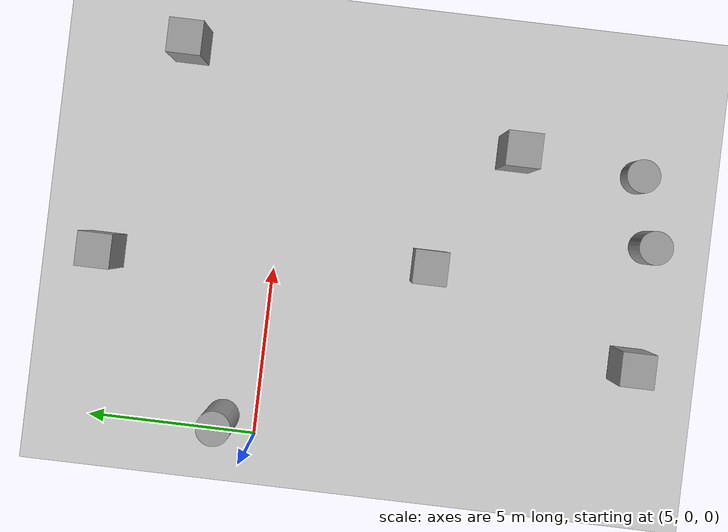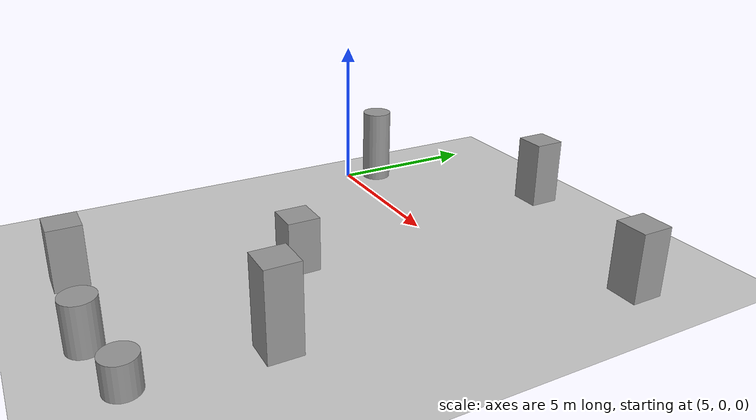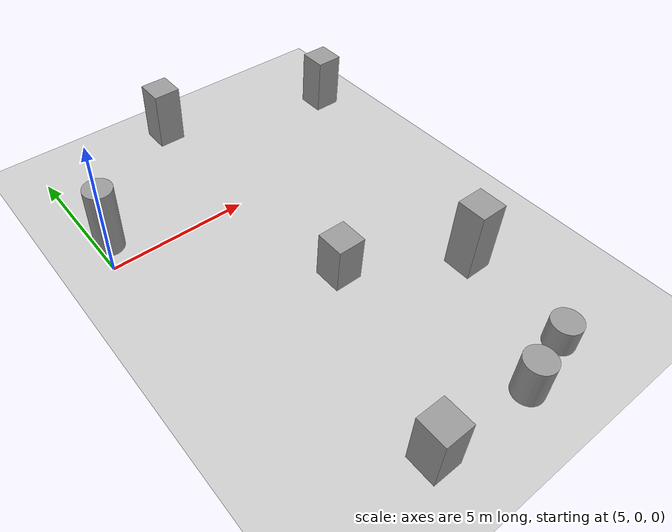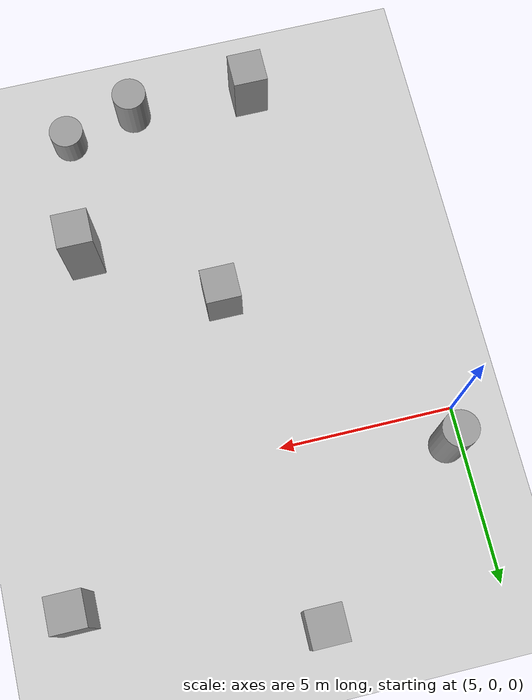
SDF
<sdf version="1.7">
 <world name="default">
  <model name="ground_plane">
   <static>1</static>
   <link name="link">
    <collision name="collision">
     <geometry><plane><normal>0 0 1</normal><size>100 100</size></plane></geometry>
     <surface><friction><ode><mu>100</mu><mu2>50</mu2></ode></friction></surface>
    </collision>
    <visual name="visual">
     <cast_shadows>0</cast_shadows>
     <geometry><plane><normal>0 0 1</normal><size>100 100</size></plane></geometry>
     <material>
      <script><uri>file://media/materials/scripts/gazebo.material</uri><name>Gazebo/Grey</name></script>
     </material>
    </visual>
   </link>
  </model>
  <model name="unit_box">
   <pose>10.61 -4.61035 0.853342 2e-06 5e-06 0.000188</pose>
   <link name="link">
    <inertial>
     <mass>1</mass>
     <inertia>
      <ixx>0.166667</ixx>
      <ixy>0</ixy>
      <ixz>0</ixz>
      <iyy>0.166667</iyy>
      <iyz>0</iyz>
      <izz>0.166667</izz>
     </inertia>
    </inertial>
    <collision name="collision"><geometry><box><size>1 1 1.70669</size></box></geometry></collision>
    <visual name="visual">
     <geometry><box><size>1 1 1.70669</size></box></geometry>
     <material>
      <script><name>Gazebo/Grey</name><uri>file://media/materials/scripts/gazebo.material</uri></script>
     </material>
    </visual>
   </link>
  </model>
  <model name="unit_box_clone_1">
   <pose>10 5 1.11652 -2e-06 3e-06 0.000105</pose>
   <link name="link">
    <inertial>
     <mass>1</mass>
     <inertia>
      <ixx>0.166667</ixx>
      <ixy>0</ixy>
      <ixz>0</ixz>
      <iyy>0.166667</iyy>
      <iyz>0</iyz>
      <izz>0.166667</izz>
     </inertia>
    </inertial>
    <collision name="collision"><geometry><box><size>1 1 2.23304</size></box></geometry></collision>
    <visual name="visual">
     <geometry><box><size>1 1 2.23304</size></box></geometry>
     <material>
      <script><name>Gazebo/Grey</name><uri>file://media/materials/scripts/gazebo.material</uri></script>
     </material>
    </visual>
   </link>
  </model>
  <model name="unit_box_clone_2">
   <pose>16.337 3.14754 1.07334 1e-06 1e-06 -0.001424</pose>
   <link name="link">
    <inertial>
     <mass>1</mass>
     <inertia>
      <ixx>0.166667</ixx>
      <ixy>0</ixy>
      <ixz>0</ixz>
      <iyy>0.166667</iyy>
      <iyz>0</iyz>
      <izz>0.166667</izz>
     </inertia>
    </inertial>
    <collision name="collision"><geometry><box><size>1 1 2.14669</size></box></geometry></collision>
    <visual name="visual">
     <geometry><box><size>1 1 2.14669</size></box></geometry>
     <material>
      <script><name>Gazebo/Grey</name><uri>file://media/materials/scripts/gazebo.material</uri></script>
     </material>
    </visual>
   </link>
  </model>
  <model name="unit_box_clone_3">
   <pose>14.2435 -6.77245 1.31673 1e-06 1e-06 6.7e-05</pose>
   <link name="link">
    <inertial>
     <mass>1</mass>
     <inertia>
      <ixx>0.166667</ixx>
      <ixy>0</ixy>
      <ixz>0</ixz>
      <iyy>0.166667</iyy>
      <iyz>0</iyz>
      <izz>0.166667</izz>
     </inertia>
    </inertial>
    <collision name="collision"><geometry><box><size>1 1 2.63346</size></box></geometry></collision>
    <visual name="visual">
     <geometry><box><size>1 1 2.63346</size></box></geometry>
     <material>
      <script><name>Gazebo/Grey</name><uri>file://media/materials/scripts/gazebo.material</uri></script>
     </material>
    </visual>
   </link>
  </model>
  <model name="unit_box_clone_4">
   <pose>8.39023 -10.8363 0.965092 -2e-06 -4e-06 0.000209</pose>
   <link name="link">
    <inertial>
     <mass>1</mass>
     <inertia>
      <ixx>0.166667</ixx>
      <ixy>0</ixy>
      <ixz>0</ixz>
      <iyy>0.166667</iyy>
      <iyz>0</iyz>
      <izz>0.166667</izz>
     </inertia>
    </inertial>
    <collision name="collision"><geometry><box><size>1 1 1.93019</size></box></geometry></collision>
    <visual name="visual">
     <geometry><box><size>1 1 1.93019</size></box></geometry>
     <material>
      <script><name>Gazebo/Grey</name><uri>file://media/materials/scripts/gazebo.material</uri></script>
     </material>
    </visual>
   </link>
  </model>
  <model name="unit_cylinder">
   <pose>11.9391 -11.0281 0.758063 0 -0 0</pose>
   <link name="link">
    <inertial>
     <mass>1</mass>
     <inertia><ixx>0.145833</ixx><ixy>0</ixy><ixz>0</ixz><iyy>0.145833</iyy><iyz>0</iyz><izz>0.125</izz></inertia>
    </inertial>
    <collision name="collision">
     <geometry><cylinder><radius>0.5</radius><length>1.51613</length></cylinder></geometry>
    </collision>
    <visual name="visual">
     <geometry><cylinder><radius>0.5</radius><length>1.51613</length></cylinder></geometry>
     <material>
      <script><name>Gazebo/Grey</name><uri>file://media/materials/scripts/gazebo.material</uri></script>
     </material>
    </visual>
   </link>
  </model>
  <model name="unit_cylinder_clone">
   <pose>14 -10.5381 0.499993 -3e-06 2e-06 0</pose>
   <link name="link">
    <inertial>
     <mass>1</mass>
     <inertia><ixx>0.145833</ixx><ixy>0</ixy><ixz>0</ixz><iyy>0.145833</iyy><iyz>0</iyz><izz>0.125</izz></inertia>
    </inertial>
    <collision name="collision">
     <geometry><cylinder><radius>0.5</radius><length>1</length></cylinder></geometry>
    </collision>
    <visual name="visual">
     <geometry><cylinder><radius>0.5</radius><length>1</length></cylinder></geometry>
     <material>
      <script><name>Gazebo/Grey</name><uri>file://media/materials/scripts/gazebo.material</uri></script>
     </material>
    </visual>
   </link>
  </model>
  <model name="unit_cylinder_clone_0">
   <pose>5.41668 1 1.27575 0 -0 1.5e-05</pose>
   <link name="link">
    <inertial>
     <mass>1</mass>
     <inertia><ixx>0.145833</ixx><ixy>0</ixy><ixz>0</ixz><iyy>0.145833</iyy><iyz>0</iyz><izz>0.125</izz></inertia>
    </inertial>
    <collision name="collision">
     <geometry><cylinder><radius>0.5</radius><length>2.55151</length></cylinder></geometry>
    </collision>
    <visual name="visual">
     <geometry><cylinder><radius>0.5</radius><length>2.55151</length></cylinder></geometry>
     <material>
      <script><name>Gazebo/Grey</name><uri>file://media/materials/scripts/gazebo.material</uri></script>
     </material>
    </visual>
   </link>
  </model>
 </world>
</sdf>
